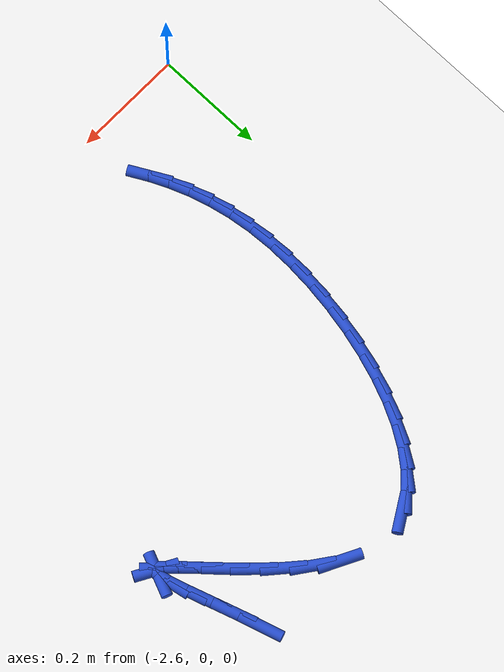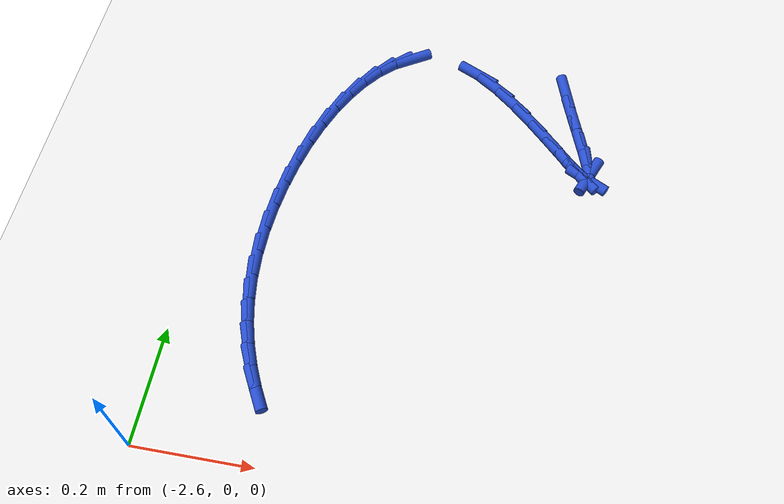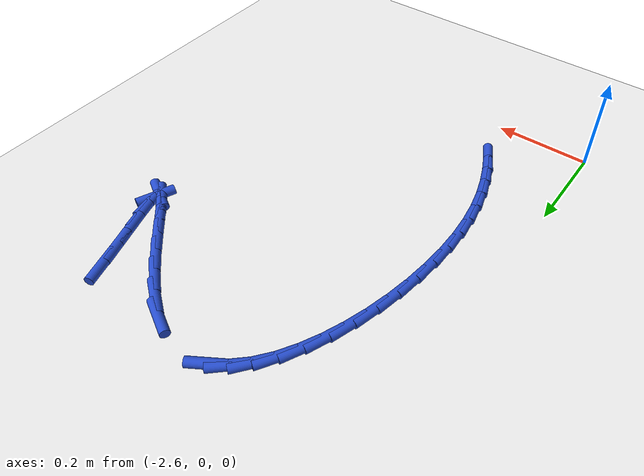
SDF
<sdf version="1.6">
 <world name="default">
  <model name="ground_plane">
   <static>1</static>
   <link name="link">
    <collision name="collision">
     <geometry><plane><normal>0 0 1</normal><size>100 100</size></plane></geometry>
     <surface><friction><ode><mu>100</mu><mu2>50</mu2></ode></friction></surface>
    </collision>
    <visual name="visual">
     <cast_shadows>0</cast_shadows>
     <geometry><plane><normal>0 0 1</normal><size>100 100</size></plane></geometry>
     <material>
      <script><uri>file://media/materials/scripts/gazebo.material</uri><name>Gazebo/WhiteGlow</name></script>
     </material>
    </visual>
   </link>
  </model>
  <model name="line">
   <link name="link_104">
    <pose>-1.9970533439537508 0.8035714074409236 0.01 0 1.57 -1.2725533234287498</pose>
    <collision name="collision">
     <geometry><cylinder><radius>0.01</radius><length>0.08</length></cylinder></geometry>
    </collision>
    <visual name="visual">
     <material>
      <script><name>Gazebo/Blue</name><uri>file://media/materials/scripts/gazebo.material</uri></script>
     </material>
     <geometry><cylinder><radius>0.01</radius><length>0.08</length></cylinder></geometry>
    </visual>
   </link>
   <link name="link_105">
    <pose>-1.9823150619624423 0.7556283415795382 0.01 0 1.57 -1.2525917484041116</pose>
    <collision name="collision">
     <geometry><cylinder><radius>0.01</radius><length>0.08</length></cylinder></geometry>
    </collision>
    <visual name="visual">
     <material>
      <script><name>Gazebo/Blue</name><uri>file://media/materials/scripts/gazebo.material</uri></script>
     </material>
     <geometry><cylinder><radius>0.01</radius><length>0.08</length></cylinder></geometry>
    </visual>
   </link>
   <link name="link_106">
    <pose>-1.9675332990080117 0.7107532567972454 0.01 0 1.57 -1.2510324673902395</pose>
    <collision name="collision">
     <geometry><cylinder><radius>0.01</radius><length>0.08</length></cylinder></geometry>
    </collision>
    <visual name="visual">
     <material>
      <script><name>Gazebo/Blue</name><uri>file://media/materials/scripts/gazebo.material</uri></script>
     </material>
     <geometry><cylinder><radius>0.01</radius><length>0.08</length></cylinder></geometry>
    </visual>
   </link>
   <link name="link_107">
    <pose>-1.954521349418991 0.6714573499690497 0.01 0 1.57 -1.2773655696983541</pose>
    <collision name="collision">
     <geometry><cylinder><radius>0.01</radius><length>0.08</length></cylinder></geometry>
    </collision>
    <visual name="visual">
     <material>
      <script><name>Gazebo/Blue</name><uri>file://media/materials/scripts/gazebo.material</uri></script>
     </material>
     <geometry><cylinder><radius>0.01</radius><length>0.08</length></cylinder></geometry>
    </visual>
   </link>
   <link name="link_108">
    <pose>-1.9450925075239096 0.6402518179699545 0.01 0 1.57 -1.3775273356076925</pose>
    <collision name="collision">
     <geometry><cylinder><radius>0.01</radius><length>0.08</length></cylinder></geometry>
    </collision>
    <visual name="visual">
     <material>
      <script><name>Gazebo/Blue</name><uri>file://media/materials/scripts/gazebo.material</uri></script>
     </material>
     <geometry><cylinder><radius>0.01</radius><length>0.08</length></cylinder></geometry>
    </visual>
   </link>
   <link name="link_109">
    <pose>-1.9410600676512986 0.6196478576749634 0.01 0 1.57 1.1724817901859115</pose>
    <collision name="collision">
     <geometry><cylinder><radius>0.01</radius><length>0.08</length></cylinder></geometry>
    </collision>
    <visual name="visual">
     <material>
      <script><name>Gazebo/Blue</name><uri>file://media/materials/scripts/gazebo.material</uri></script>
     </material>
     <geometry><cylinder><radius>0.01</radius><length>0.08</length></cylinder></geometry>
    </visual>
   </link>
   <link name="link_110">
    <pose>-1.9442231810246435 0.612131094115623 0.01 0 1.57 -0.5077446267210732</pose>
    <collision name="collision">
     <geometry><cylinder><radius>0.01</radius><length>0.08</length></cylinder></geometry>
    </collision>
    <visual name="visual">
     <material>
      <script><name>Gazebo/Blue</name><uri>file://media/materials/scripts/gazebo.material</uri></script>
     </material>
     <geometry><cylinder><radius>0.01</radius><length>0.08</length></cylinder></geometry>
    </visual>
   </link>
   <link name="link_111">
    <pose>-1.9553492380669502 0.6183216478537652 0.01 0 1.57 -0.7650446171765993</pose>
    <collision name="collision">
     <geometry><cylinder><radius>0.01</radius><length>0.08</length></cylinder></geometry>
    </collision>
    <visual name="visual">
     <material>
      <script><name>Gazebo/Blue</name><uri>file://media/materials/scripts/gazebo.material</uri></script>
     </material>
     <geometry><cylinder><radius>0.01</radius><length>0.08</length></cylinder></geometry>
    </visual>
   </link>
   <link name="link_112">
    <pose>-1.9734911053410125 0.6357396458062187 0.01 0 1.57 -0.8219241361403347</pose>
    <collision name="collision">
     <geometry><cylinder><radius>0.01</radius><length>0.08</length></cylinder></geometry>
    </collision>
    <visual name="visual">
     <material>
      <script><name>Gazebo/Blue</name><uri>file://media/materials/scripts/gazebo.material</uri></script>
     </material>
     <geometry><cylinder><radius>0.01</radius><length>0.08</length></cylinder></geometry>
    </visual>
   </link>
   <link name="link_113">
    <pose>-1.9975398132495066 0.6616126024161441 0.01 0 1.57 -0.8302151645084844</pose>
    <collision name="collision">
     <geometry><cylinder><radius>0.01</radius><length>0.08</length></cylinder></geometry>
    </collision>
    <visual name="visual">
     <material>
      <script><name>Gazebo/Blue</name><uri>file://media/materials/scripts/gazebo.material</uri></script>
     </material>
     <geometry><cylinder><radius>0.01</radius><length>0.08</length></cylinder></geometry>
    </visual>
   </link>
   <link name="link_114">
    <pose>-2.0263863921951093 0.6931680321267029 0.01 0 1.57 -0.8141948428678345</pose>
    <collision name="collision">
     <geometry><cylinder><radius>0.01</radius><length>0.08</length></cylinder></geometry>
    </collision>
    <visual name="visual">
     <material>
      <script><name>Gazebo/Blue</name><uri>file://media/materials/scripts/gazebo.material</uri></script>
     </material>
     <geometry><cylinder><radius>0.01</radius><length>0.08</length></cylinder></geometry>
    </visual>
   </link>
   <link name="link_115">
    <pose>-2.058921872580497 0.7276334493810555 0.01 0 1.57 -0.7780473885718753</pose>
    <collision name="collision">
     <geometry><cylinder><radius>0.01</radius><length>0.08</length></cylinder></geometry>
    </collision>
    <visual name="visual">
     <material>
      <script><name>Gazebo/Blue</name><uri>file://media/materials/scripts/gazebo.material</uri></script>
     </material>
     <geometry><cylinder><radius>0.01</radius><length>0.08</length></cylinder></geometry>
    </visual>
   </link>
   <link name="link_116">
    <pose>-2.0940372848083455 0.762236368622363 0.01 0 1.57 -0.7181307561104763</pose>
    <collision name="collision">
     <geometry><cylinder><radius>0.01</radius><length>0.08</length></cylinder></geometry>
    </collision>
    <visual name="visual">
     <material>
      <script><name>Gazebo/Blue</name><uri>file://media/materials/scripts/gazebo.material</uri></script>
     </material>
     <geometry><cylinder><radius>0.01</radius><length>0.08</length></cylinder></geometry>
    </visual>
   </link>
   <link name="link_117">
    <pose>-2.1306236592813304 0.7942043042937856 0.01 0 1.57 -0.6232676340962342</pose>
    <collision name="collision">
     <geometry><cylinder><radius>0.01</radius><length>0.08</length></cylinder></geometry>
    </collision>
    <visual name="visual">
     <material>
      <script><name>Gazebo/Blue</name><uri>file://media/materials/scripts/gazebo.material</uri></script>
     </material>
     <geometry><cylinder><radius>0.01</radius><length>0.08</length></cylinder></geometry>
    </visual>
   </link>
   <link name="link_118">
    <pose>-2.1675720264021274 0.8207647708384843 0.01 0 1.57 -0.46985326213936796</pose>
    <collision name="collision">
     <geometry><cylinder><radius>0.01</radius><length>0.08</length></cylinder></geometry>
    </collision>
    <visual name="visual">
     <material>
      <script><name>Gazebo/Blue</name><uri>file://media/materials/scripts/gazebo.material</uri></script>
     </material>
     <geometry><cylinder><radius>0.01</radius><length>0.08</length></cylinder></geometry>
    </visual>
   </link>
   <link name="link_122">
    <pose>-2.3020810400863074 0.8364671027911738 0.01 0 1.57 0.5487432921528844</pose>
    <collision name="collision">
     <geometry><cylinder><radius>0.01</radius><length>0.08</length></cylinder></geometry>
    </collision>
    <visual name="visual">
     <material>
      <script><name>Gazebo/Blue</name><uri>file://media/materials/scripts/gazebo.material</uri></script>
     </material>
     <geometry><cylinder><radius>0.01</radius><length>0.08</length></cylinder></geometry>
    </visual>
   </link>
   <link name="link_123">
    <pose>-2.3309828515612767 0.8187971872282294 0.01 0 1.57 0.7430811527325961</pose>
    <collision name="collision">
     <geometry><cylinder><radius>0.01</radius><length>0.08</length></cylinder></geometry>
    </collision>
    <visual name="visual">
     <material>
      <script><name>Gazebo/Blue</name><uri>file://media/materials/scripts/gazebo.material</uri></script>
     </material>
     <geometry><cylinder><radius>0.01</radius><length>0.08</length></cylinder></geometry>
    </visual>
   </link>
   <link name="link_124">
    <pose>-2.3577850006090446 0.7941725653372275 0.01 0 1.57 0.8955102381242637</pose>
    <collision name="collision">
     <geometry><cylinder><radius>0.01</radius><length>0.08</length></cylinder></geometry>
    </collision>
    <visual name="visual">
     <material>
      <script><name>Gazebo/Blue</name><uri>file://media/materials/scripts/gazebo.material</uri></script>
     </material>
     <geometry><cylinder><radius>0.01</radius><length>0.08</length></cylinder></geometry>
    </visual>
   </link>
   <link name="link_125">
    <pose>-2.3823878479466547 0.7634533514113423 0.01 0 1.57 1.0155471447633961</pose>
    <collision name="collision">
     <geometry><cylinder><radius>0.01</radius><length>0.08</length></cylinder></geometry>
    </collision>
    <visual name="visual">
     <material>
      <script><name>Gazebo/Blue</name><uri>file://media/materials/scripts/gazebo.material</uri></script>
     </material>
     <geometry><cylinder><radius>0.01</radius><length>0.08</length></cylinder></geometry>
    </visual>
   </link>
   <link name="link_126">
    <pose>-2.4046917542911492 0.7274996597437472 0.01 0 1.57 1.1122938154849582</pose>
    <collision name="collision">
     <geometry><cylinder><radius>0.01</radius><length>0.08</length></cylinder></geometry>
    </collision>
    <visual name="visual">
     <material>
      <script><name>Gazebo/Blue</name><uri>file://media/materials/scripts/gazebo.material</uri></script>
     </material>
     <geometry><cylinder><radius>0.01</radius><length>0.08</length></cylinder></geometry>
    </visual>
   </link>
   <link name="link_127">
    <pose>-2.4245970803595753 0.6871716046276168 0.01 0 1.57 1.19284510254931</pose>
    <collision name="collision">
     <geometry><cylinder><radius>0.01</radius><length>0.08</length></cylinder></geometry>
    </collision>
    <visual name="visual">
     <material>
      <script><name>Gazebo/Blue</name><uri>file://media/materials/scripts/gazebo.material</uri></script>
     </material>
     <geometry><cylinder><radius>0.01</radius><length>0.08</length></cylinder></geometry>
    </visual>
   </link>
   <link name="link_128">
    <pose>-2.442004186868974 0.6433293003561247 0.01 0 1.57 1.262452068135975</pose>
    <collision name="collision">
     <geometry><cylinder><radius>0.01</radius><length>0.08</length></cylinder></geometry>
    </collision>
    <visual name="visual">
     <material>
      <script><name>Gazebo/Blue</name><uri>file://media/materials/scripts/gazebo.material</uri></script>
     </material>
     <geometry><cylinder><radius>0.01</radius><length>0.08</length></cylinder></geometry>
    </visual>
   </link>
   <link name="link_129">
    <pose>-2.45681343453639 0.5968328612224442 0.01 0 1.57 1.3250550792648215</pose>
    <collision name="collision">
     <geometry><cylinder><radius>0.01</radius><length>0.08</length></cylinder></geometry>
    </collision>
    <visual name="visual">
     <material>
      <script><name>Gazebo/Blue</name><uri>file://media/materials/scripts/gazebo.material</uri></script>
     </material>
     <geometry><cylinder><radius>0.01</radius><length>0.08</length></cylinder></geometry>
    </visual>
   </link>
   <link name="link_130">
    <pose>-2.468925184078867 0.5485424015197499 0.01 0 1.57 1.3837799050140054</pose>
    <collision name="collision">
     <geometry><cylinder><radius>0.01</radius><length>0.08</length></cylinder></geometry>
    </collision>
    <visual name="visual">
     <material>
      <script><name>Gazebo/Blue</name><uri>file://media/materials/scripts/gazebo.material</uri></script>
     </material>
     <geometry><cylinder><radius>0.01</radius><length>0.08</length></cylinder></geometry>
    </visual>
   </link>
   <link name="link_131">
    <pose>-2.4782397962134493 0.49931803554121523 0.01 0 1.57 1.4413403041875825</pose>
    <collision name="collision">
     <geometry><cylinder><radius>0.01</radius><length>0.08</length></cylinder></geometry>
    </collision>
    <visual name="visual">
     <material>
      <script><name>Gazebo/Blue</name><uri>file://media/materials/scripts/gazebo.material</uri></script>
     </material>
     <geometry><cylinder><radius>0.01</radius><length>0.08</length></cylinder></geometry>
    </visual>
   </link>
   <link name="link_132">
    <pose>-2.4846576316571807 0.45001987758001427 0.01 0 1.57 1.500385396519482</pose>
    <collision name="collision">
     <geometry><cylinder><radius>0.01</radius><length>0.08</length></cylinder></geometry>
    </collision>
    <visual name="visual">
     <material>
      <script><name>Gazebo/Blue</name><uri>file://media/materials/scripts/gazebo.material</uri></script>
     </material>
     <geometry><cylinder><radius>0.01</radius><length>0.08</length></cylinder></geometry>
    </visual>
   </link>
   <link name="link_133">
    <pose>-2.4880790511271043 0.4015080419293208 0.01 0 1.57 1.5638539131474214</pose>
    <collision name="collision">
     <geometry><cylinder><radius>0.01</radius><length>0.08</length></cylinder></geometry>
    </collision>
    <visual name="visual">
     <material>
      <script><name>Gazebo/Blue</name><uri>file://media/materials/scripts/gazebo.material</uri></script>
     </material>
     <geometry><cylinder><radius>0.01</radius><length>0.08</length></cylinder></geometry>
    </visual>
   </link>
   <link name="link_134">
    <pose>-2.488404415340264 0.35464264288230946 0.01 0 1.57 -1.5069010419385664</pose>
    <collision name="collision">
     <geometry><cylinder><radius>0.01</radius><length>0.08</length></cylinder></geometry>
    </collision>
    <visual name="visual">
     <material>
      <script><name>Gazebo/Blue</name><uri>file://media/materials/scripts/gazebo.material</uri></script>
     </material>
     <geometry><cylinder><radius>0.01</radius><length>0.08</length></cylinder></geometry>
    </visual>
   </link>
   <link name="link_135">
    <pose>-2.485560673634183 0.31019694241445256 0.01 0 1.57 -1.4314056448879777</pose>
    <collision name="collision">
     <geometry><cylinder><radius>0.01</radius><length>0.08</length></cylinder></geometry>
    </collision>
    <visual name="visual">
     <material>
      <script><name>Gazebo/Blue</name><uri>file://media/materials/scripts/gazebo.material</uri></script>
     </material>
     <geometry><cylinder><radius>0.01</radius><length>0.08</length></cylinder></geometry>
    </visual>
   </link>
   <link name="link_136">
    <pose>-2.479679203852149 0.2682764322592377 0.01 0 1.57 -1.3547013807285666</pose>
    <collision name="collision">
     <geometry><cylinder><radius>0.01</radius><length>0.08</length></cylinder></geometry>
    </collision>
    <visual name="visual">
     <material>
      <script><name>Gazebo/Blue</name><uri>file://media/materials/scripts/gazebo.material</uri></script>
     </material>
     <geometry><cylinder><radius>0.01</radius><length>0.08</length></cylinder></geometry>
    </visual>
   </link>
   <link name="link_137">
    <pose>-2.4709862036868757 0.22867687301186201 0.01 0 1.57 -1.2785455433193291</pose>
    <collision name="collision">
     <geometry><cylinder><radius>0.01</radius><length>0.08</length></cylinder></geometry>
    </collision>
    <visual name="visual">
     <material>
      <script><name>Gazebo/Blue</name><uri>file://media/materials/scripts/gazebo.material</uri></script>
     </material>
     <geometry><cylinder><radius>0.01</radius><length>0.08</length></cylinder></geometry>
    </visual>
   </link>
   <link name="link_138">
    <pose>-2.4597083909789066 0.19119232619309529 0.01 0 1.57 -1.2047730733078796</pose>
    <collision name="collision">
     <geometry><cylinder><radius>0.01</radius><length>0.08</length></cylinder></geometry>
    </collision>
    <visual name="visual">
     <material>
      <script><name>Gazebo/Blue</name><uri>file://media/materials/scripts/gazebo.material</uri></script>
     </material>
     <geometry><cylinder><radius>0.01</radius><length>0.08</length></cylinder></geometry>
    </visual>
   </link>
   <link name="link_139">
    <pose>-2.446072483568789 0.15561685332371186 0.01 0 1.57 -1.1351346317583255</pose>
    <collision name="collision">
     <geometry><cylinder><radius>0.01</radius><length>0.08</length></cylinder></geometry>
    </collision>
    <visual name="visual">
     <material>
      <script><name>Gazebo/Blue</name><uri>file://media/materials/scripts/gazebo.material</uri></script>
     </material>
     <geometry><cylinder><radius>0.01</radius><length>0.08</length></cylinder></geometry>
    </visual>
   </link>
   <link name="link_140">
    <pose>-2.430305199297066 0.12174451592448254 0.01 0 1.57 -1.071145523600793</pose>
    <collision name="collision">
     <geometry><cylinder><radius>0.01</radius><length>0.08</length></cylinder></geometry>
    </collision>
    <visual name="visual">
     <material>
      <script><name>Gazebo/Blue</name><uri>file://media/materials/scripts/gazebo.material</uri></script>
     </material>
     <geometry><cylinder><radius>0.01</radius><length>0.08</length></cylinder></geometry>
    </visual>
   </link>
  </model>
 </world>
</sdf>
